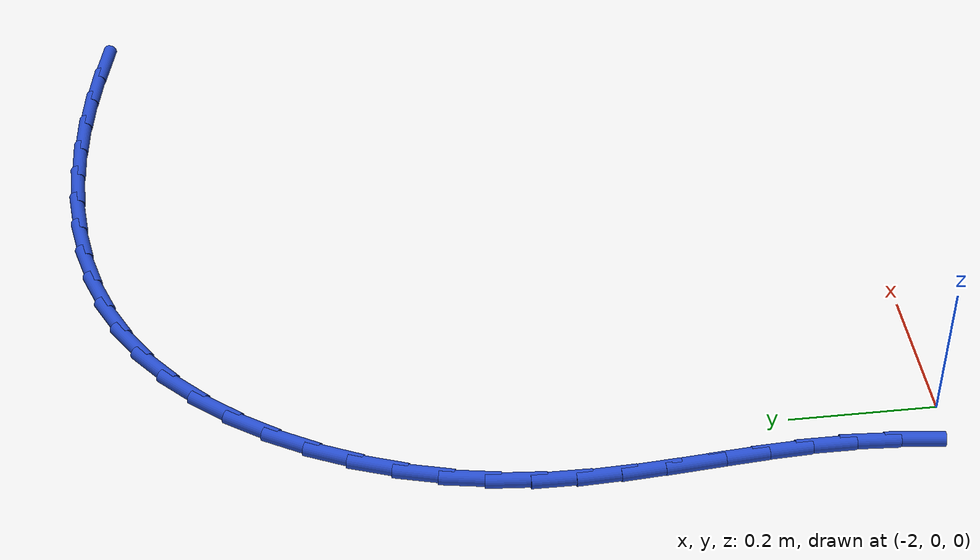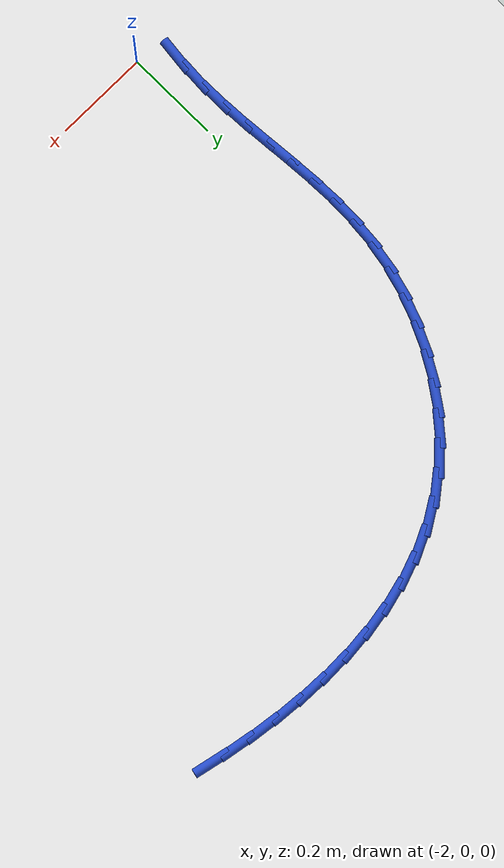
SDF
<sdf version="1.6">
 <world name="default">
  <model name="ground_plane">
   <static>1</static>
   <link name="link">
    <collision name="collision">
     <geometry><plane><normal>0 0 1</normal><size>100 100</size></plane></geometry>
     <surface><friction><ode><mu>100</mu><mu2>50</mu2></ode></friction></surface>
    </collision>
    <visual name="visual">
     <cast_shadows>0</cast_shadows>
     <geometry><plane><normal>0 0 1</normal><size>100 100</size></plane></geometry>
     <material>
      <script><uri>file://media/materials/scripts/gazebo.material</uri><name>Gazebo/WhiteGlow</name></script>
     </material>
    </visual>
   </link>
  </model>
  <model name="line">
   <link name="link_29">
    <pose>-1.1224520248759164 1.0967475227892627 0.01 0 1.57 -0.21370977836120517</pose>
    <collision name="collision">
     <geometry><cylinder><radius>0.01</radius><length>0.08</length></cylinder></geometry>
    </collision>
    <visual name="visual">
     <material>
      <script><name>Gazebo/Blue</name><uri>file://media/materials/scripts/gazebo.material</uri></script>
     </material>
     <geometry><cylinder><radius>0.01</radius><length>0.08</length></cylinder></geometry>
    </visual>
   </link>
   <link name="link_30">
    <pose>-1.180214602582622 1.1092833794274863 0.01 0 1.57 -0.17360159410918885</pose>
    <collision name="collision">
     <geometry><cylinder><radius>0.01</radius><length>0.08</length></cylinder></geometry>
    </collision>
    <visual name="visual">
     <material>
      <script><name>Gazebo/Blue</name><uri>file://media/materials/scripts/gazebo.material</uri></script>
     </material>
     <geometry><cylinder><radius>0.01</radius><length>0.08</length></cylinder></geometry>
    </visual>
   </link>
   <link name="link_31">
    <pose>-1.2392868606816847 1.1196426953003753 0.01 0 1.57 -0.13006029389110232</pose>
    <collision name="collision">
     <geometry><cylinder><radius>0.01</radius><length>0.08</length></cylinder></geometry>
    </collision>
    <visual name="visual">
     <material>
      <script><name>Gazebo/Blue</name><uri>file://media/materials/scripts/gazebo.material</uri></script>
     </material>
     <geometry><cylinder><radius>0.01</radius><length>0.08</length></cylinder></geometry>
    </visual>
   </link>
   <link name="link_32">
    <pose>-1.2993240714025127 1.127495480988387 0.01 0 1.57 -0.08211868866594585</pose>
    <collision name="collision">
     <geometry><cylinder><radius>0.01</radius><length>0.08</length></cylinder></geometry>
    </collision>
    <visual name="visual">
     <material>
      <script><name>Gazebo/Blue</name><uri>file://media/materials/scripts/gazebo.material</uri></script>
     </material>
     <geometry><cylinder><radius>0.01</radius><length>0.08</length></cylinder></geometry>
    </visual>
   </link>
   <link name="link_33">
    <pose>-1.3598896356812398 1.132480255653649 0.01 0 1.57 -0.028929618619250863</pose>
    <collision name="collision">
     <geometry><cylinder><radius>0.01</radius><length>0.08</length></cylinder></geometry>
    </collision>
    <visual name="visual">
     <material>
      <script><name>Gazebo/Blue</name><uri>file://media/materials/scripts/gazebo.material</uri></script>
     </material>
     <geometry><cylinder><radius>0.01</radius><length>0.08</length></cylinder></geometry>
    </visual>
   </link>
   <link name="link_34">
    <pose>-1.4205469544539988 1.1342355384582878 0.01 0 1.57 0.030426928930759555</pose>
    <collision name="collision">
     <geometry><cylinder><radius>0.01</radius><length>0.08</length></cylinder></geometry>
    </collision>
    <visual name="visual">
     <material>
      <script><name>Gazebo/Blue</name><uri>file://media/materials/scripts/gazebo.material</uri></script>
     </material>
     <geometry><cylinder><radius>0.01</radius><length>0.08</length></cylinder></geometry>
    </visual>
   </link>
   <link name="link_35">
    <pose>-1.4808594286569248 1.1323998485644302 0.01 0 1.57 0.09692435639749962</pose>
    <collision name="collision">
     <geometry><cylinder><radius>0.01</radius><length>0.08</length></cylinder></geometry>
    </collision>
    <visual name="visual">
     <material>
      <script><name>Gazebo/Blue</name><uri>file://media/materials/scripts/gazebo.material</uri></script>
     </material>
     <geometry><cylinder><radius>0.01</radius><length>0.08</length></cylinder></geometry>
    </visual>
   </link>
   <link name="link_36">
    <pose>-1.5403904592261501 1.1266117051342037 0.01 0 1.57 0.17153638686467093</pose>
    <collision name="collision">
     <geometry><cylinder><radius>0.01</radius><length>0.08</length></cylinder></geometry>
    </collision>
    <visual name="visual">
     <material>
      <script><name>Gazebo/Blue</name><uri>file://media/materials/scripts/gazebo.material</uri></script>
     </material>
     <geometry><cylinder><radius>0.01</radius><length>0.08</length></cylinder></geometry>
    </visual>
   </link>
   <link name="link_37">
    <pose>-1.59870344709781 1.1165096273297346 0.01 0 1.57 0.25513372203111684</pose>
    <collision name="collision">
     <geometry><cylinder><radius>0.01</radius><length>0.08</length></cylinder></geometry>
    </collision>
    <visual name="visual">
     <material>
      <script><name>Gazebo/Blue</name><uri>file://media/materials/scripts/gazebo.material</uri></script>
     </material>
     <geometry><cylinder><radius>0.01</radius><length>0.08</length></cylinder></geometry>
    </visual>
   </link>
   <link name="link_38">
    <pose>-1.6553617932080373 1.10173213431315 0.01 0 1.57 0.34831457482460826</pose>
    <collision name="collision">
     <geometry><cylinder><radius>0.01</radius><length>0.08</length></cylinder></geometry>
    </collision>
    <visual name="visual">
     <material>
      <script><name>Gazebo/Blue</name><uri>file://media/materials/scripts/gazebo.material</uri></script>
     </material>
     <geometry><cylinder><radius>0.01</radius><length>0.08</length></cylinder></geometry>
    </visual>
   </link>
   <link name="link_39">
    <pose>-1.7099288984929666 1.0819177452465767 0.01 0 1.57 0.45116687953978185</pose>
    <collision name="collision">
     <geometry><cylinder><radius>0.01</radius><length>0.08</length></cylinder></geometry>
    </collision>
    <visual name="visual">
     <material>
      <script><name>Gazebo/Blue</name><uri>file://media/materials/scripts/gazebo.material</uri></script>
     </material>
     <geometry><cylinder><radius>0.01</radius><length>0.08</length></cylinder></geometry>
    </visual>
   </link>
   <link name="link_40">
    <pose>-1.7619681638887306 1.056704979292142 0.01 0 1.57 0.5627829915981605</pose>
    <collision name="collision">
     <geometry><cylinder><radius>0.01</radius><length>0.08</length></cylinder></geometry>
    </collision>
    <visual name="visual">
     <material>
      <script><name>Gazebo/Blue</name><uri>file://media/materials/scripts/gazebo.material</uri></script>
     </material>
     <geometry><cylinder><radius>0.01</radius><length>0.08</length></cylinder></geometry>
    </visual>
   </link>
   <link name="link_41">
    <pose>-1.8110452927404566 1.0257454964877748 0.01 0 1.57 0.6748129924306234</pose>
    <collision name="collision">
     <geometry><cylinder><radius>0.01</radius><length>0.08</length></cylinder></geometry>
    </collision>
    <visual name="visual">
     <material>
      <script><name>Gazebo/Blue</name><uri>file://media/materials/scripts/gazebo.material</uri></script>
     </material>
     <geometry><cylinder><radius>0.01</radius><length>0.08</length></cylinder></geometry>
    </visual>
   </link>
   <link name="link_42">
    <pose>-1.856803526624906 0.9891335021685617 0.01 0 1.57 0.7788977428085622</pose>
    <collision name="collision">
     <geometry><cylinder><radius>0.01</radius><length>0.08</length></cylinder></geometry>
    </collision>
    <visual name="visual">
     <material>
      <script><name>Gazebo/Blue</name><uri>file://media/materials/scripts/gazebo.material</uri></script>
     </material>
     <geometry><cylinder><radius>0.01</radius><length>0.08</length></cylinder></geometry>
    </visual>
   </link>
   <link name="link_43">
    <pose>-1.8989804084596087 0.9475014215127965 0.01 0 1.57 0.8758518381096783</pose>
    <collision name="collision">
     <geometry><cylinder><radius>0.01</radius><length>0.08</length></cylinder></geometry>
    </collision>
    <visual name="visual">
     <material>
      <script><name>Gazebo/Blue</name><uri>file://media/materials/scripts/gazebo.material</uri></script>
     </material>
     <geometry><cylinder><radius>0.01</radius><length>0.08</length></cylinder></geometry>
    </visual>
   </link>
   <link name="link_44">
    <pose>-1.9373191765049074 0.901514185562315 0.01 0 1.57 0.9672710892178333</pose>
    <collision name="collision">
     <geometry><cylinder><radius>0.01</radius><length>0.08</length></cylinder></geometry>
    </collision>
    <visual name="visual">
     <material>
      <script><name>Gazebo/Blue</name><uri>file://media/materials/scripts/gazebo.material</uri></script>
     </material>
     <geometry><cylinder><radius>0.01</radius><length>0.08</length></cylinder></geometry>
    </visual>
   </link>
   <link name="link_45">
    <pose>-1.9715630690211432 0.8518367253589506 0.01 0 1.57 1.0548544276435707</pose>
    <collision name="collision">
     <geometry><cylinder><radius>0.01</radius><length>0.08</length></cylinder></geometry>
    </collision>
    <visual name="visual">
     <material>
      <script><name>Gazebo/Blue</name><uri>file://media/materials/scripts/gazebo.material</uri></script>
     </material>
     <geometry><cylinder><radius>0.01</radius><length>0.08</length></cylinder></geometry>
    </visual>
   </link>
   <link name="link_46">
    <pose>-2.0014553242686577 0.7991339719445388 0.01 0 1.57 1.1403349653423231</pose>
    <collision name="collision">
     <geometry><cylinder><radius>0.01</radius><length>0.08</length></cylinder></geometry>
    </collision>
    <visual name="visual">
     <material>
      <script><name>Gazebo/Blue</name><uri>file://media/materials/scripts/gazebo.material</uri></script>
     </material>
     <geometry><cylinder><radius>0.01</radius><length>0.08</length></cylinder></geometry>
    </visual>
   </link>
   <link name="link_47">
    <pose>-2.026739180507793 0.7440708563609135 0.01 0 1.57 1.2254650713853976</pose>
    <collision name="collision">
     <geometry><cylinder><radius>0.01</radius><length>0.08</length></cylinder></geometry>
    </collision>
    <visual name="visual">
     <material>
      <script><name>Gazebo/Blue</name><uri>file://media/materials/scripts/gazebo.material</uri></script>
     </material>
     <geometry><cylinder><radius>0.01</radius><length>0.08</length></cylinder></geometry>
    </visual>
   </link>
   <link name="link_48">
    <pose>-2.0471578759988898 0.6873123096499096 0.01 0 1.57 1.312030732838801</pose>
    <collision name="collision">
     <geometry><cylinder><radius>0.01</radius><length>0.08</length></cylinder></geometry>
    </collision>
    <visual name="visual">
     <material>
      <script><name>Gazebo/Blue</name><uri>file://media/materials/scripts/gazebo.material</uri></script>
     </material>
     <geometry><cylinder><radius>0.01</radius><length>0.08</length></cylinder></geometry>
    </visual>
   </link>
   <link name="link_49">
    <pose>-2.062454649002291 0.6295232628533622 0.01 0 1.57 1.4018391199782954</pose>
    <collision name="collision">
     <geometry><cylinder><radius>0.01</radius><length>0.08</length></cylinder></geometry>
    </collision>
    <visual name="visual">
     <material>
      <script><name>Gazebo/Blue</name><uri>file://media/materials/scripts/gazebo.material</uri></script>
     </material>
     <geometry><cylinder><radius>0.01</radius><length>0.08</length></cylinder></geometry>
    </visual>
   </link>
   <link name="link_50">
    <pose>-2.0723750655008755 0.5713674807050442 0.01 0 1.57 1.4899437123613744</pose>
    <collision name="collision">
     <geometry><cylinder><radius>0.01</radius><length>0.08</length></cylinder></geometry>
    </collision>
    <visual name="visual">
     <material>
      <script><name>Gazebo/Blue</name><uri>file://media/materials/scripts/gazebo.material</uri></script>
     </material>
     <geometry><cylinder><radius>0.01</radius><length>0.08</length></cylinder></geometry>
    </visual>
   </link>
   <link name="link_51">
    <pose>-2.0770801863214543 0.5133005437682764 0.01 0 1.57 1.5614423159467175</pose>
    <collision name="collision">
     <geometry><cylinder><radius>0.01</radius><length>0.08</length></cylinder></geometry>
    </collision>
    <visual name="visual">
     <material>
      <script><name>Gazebo/Blue</name><uri>file://media/materials/scripts/gazebo.material</uri></script>
     </material>
     <geometry><cylinder><radius>0.01</radius><length>0.08</length></cylinder></geometry>
    </visual>
   </link>
   <link name="link_52">
    <pose>-2.077622446054785 0.45533140875454736 0.01 0 1.57 -1.5284719818172274</pose>
    <collision name="collision">
     <geometry><cylinder><radius>0.01</radius><length>0.08</length></cylinder></geometry>
    </collision>
    <visual name="visual">
     <material>
      <script><name>Gazebo/Blue</name><uri>file://media/materials/scripts/gazebo.material</uri></script>
     </material>
     <geometry><cylinder><radius>0.01</radius><length>0.08</length></cylinder></geometry>
    </visual>
   </link>
   <link name="link_53">
    <pose>-2.075169549538066 0.39741127608550836 0.01 0 1.57 -1.4970292974746218</pose>
    <collision name="collision">
     <geometry><cylinder><radius>0.01</radius><length>0.08</length></cylinder></geometry>
    </collision>
    <visual name="visual">
     <material>
      <script><name>Gazebo/Blue</name><uri>file://media/materials/scripts/gazebo.material</uri></script>
     </material>
     <geometry><cylinder><radius>0.01</radius><length>0.08</length></cylinder></geometry>
    </visual>
   </link>
   <link name="link_54">
    <pose>-2.070889201608494 0.33949134618280863 0.01 0 1.57 -1.4857814491273322</pose>
    <collision name="collision">
     <geometry><cylinder><radius>0.01</radius><length>0.08</length></cylinder></geometry>
    </collision>
    <visual name="visual">
     <material>
      <script><name>Gazebo/Blue</name><uri>file://media/materials/scripts/gazebo.material</uri></script>
     </material>
     <geometry><cylinder><radius>0.01</radius><length>0.08</length></cylinder></geometry>
    </visual>
   </link>
   <link name="link_55">
    <pose>-2.0659491071032665 0.2815228194680988 0.01 0 1.57 -1.4946146611236384</pose>
    <collision name="collision">
     <geometry><cylinder><radius>0.01</radius><length>0.08</length></cylinder></geometry>
    </collision>
    <visual name="visual">
     <material>
      <script><name>Gazebo/Blue</name><uri>file://media/materials/scripts/gazebo.material</uri></script>
     </material>
     <geometry><cylinder><radius>0.01</radius><length>0.08</length></cylinder></geometry>
    </visual>
   </link>
   <link name="link_56">
    <pose>-2.06151697085958 0.22345689636302843 0.01 0 1.57 -1.5234794495223831</pose>
    <collision name="collision">
     <geometry><cylinder><radius>0.01</radius><length>0.08</length></cylinder></geometry>
    </collision>
    <visual name="visual">
     <material>
      <script><name>Gazebo/Blue</name><uri>file://media/materials/scripts/gazebo.material</uri></script>
     </material>
     <geometry><cylinder><radius>0.01</radius><length>0.08</length></cylinder></geometry>
    </visual>
   </link>
   <link name="link_57">
    <pose>-2.0587604977146317 0.1652447772892484 0.01 0 1.57 1.5693090549898614</pose>
    <collision name="collision">
     <geometry><cylinder><radius>0.01</radius><length>0.08</length></cylinder></geometry>
    </collision>
    <visual name="visual">
     <material>
      <script><name>Gazebo/Blue</name><uri>file://media/materials/scripts/gazebo.material</uri></script>
     </material>
     <geometry><cylinder><radius>0.01</radius><length>0.08</length></cylinder></geometry>
    </visual>
   </link>
   <link name="link_58">
    <pose>-2.0588473650306547 0.10683766456148841 0.01 0 1.57 1.5076668318313924</pose>
    <collision name="collision">
     <geometry><cylinder><radius>0.01</radius><length>0.08</length></cylinder></geometry>
    </collision>
    <visual name="visual">
     <material>
      <script><name>Gazebo/Blue</name><uri>file://media/materials/scripts/gazebo.material</uri></script>
     </material>
     <geometry><cylinder><radius>0.01</radius><length>0.08</length></cylinder></geometry>
    </visual>
   </link>
   <link name="link_59">
    <pose>-2.062553185887593 0.048213774512669325 0.01 0 1.57 1.4569156353126853</pose>
    <collision name="collision">
     <geometry><cylinder><radius>0.01</radius><length>0.08</length></cylinder></geometry>
    </collision>
    <visual name="visual">
     <material>
      <script><name>Gazebo/Blue</name><uri>file://media/materials/scripts/gazebo.material</uri></script>
     </material>
     <geometry><cylinder><radius>0.01</radius><length>0.08</length></cylinder></geometry>
    </visual>
   </link>
  </model>
 </world>
</sdf>
